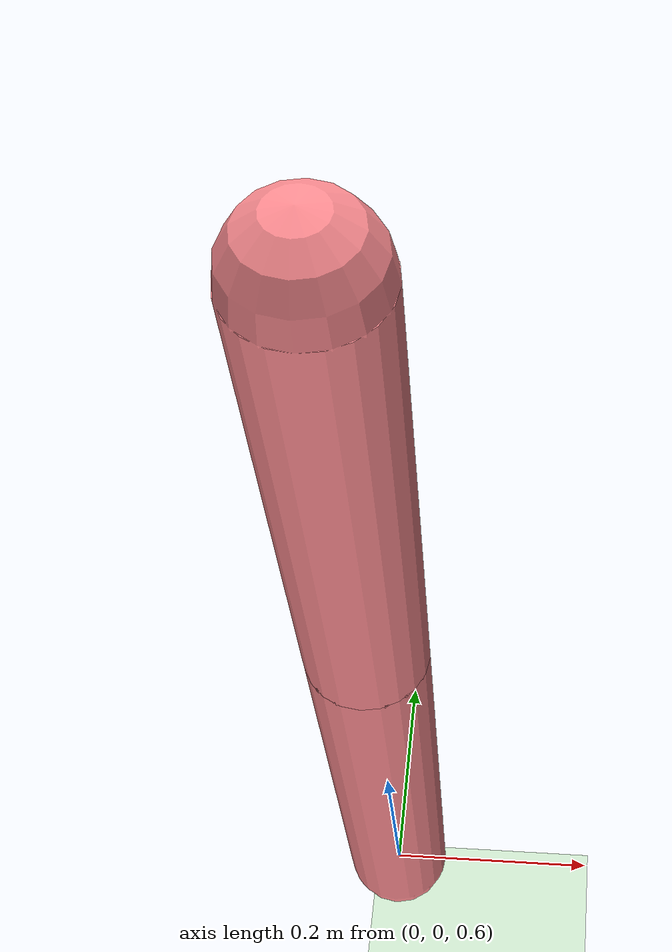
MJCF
<mujoco model="hopper">
  <compiler angle="degree" coordinate="global" inertiafromgeom="true"/>
  <default>
    <joint armature="1" damping="1" limited="true"/>
    <geom conaffinity="1" condim="1" contype="1" margin="0.001" rgba=".98 .54 .56 1." solimp=".8 .8 .01" solref=".02 1"/>
    <motor ctrllimited="true" ctrlrange="-.4 .4"/>
  </default>
  <option integrator="RK4" timestep="0.002"/>
  <visual>
    <headlight ambient=".1 .1 .1" diffuse=".6 .6 .6" specular="0.3 0.3 0.3"/>
    <map znear=".01"/>
    <quality shadowsize="16384"/>
  </visual>
  <worldbody>
    <light cutoff="100" diffuse="1 1 1" dir="-1 0 -1.3" directional="true" exponent="1" pos="1 0 1.3" specular=".1 .1 .1" castshadow="true"/>
    <geom conaffinity="1" condim="3" name="floor" pos="0 0 0" rgba="0.8 0.9 0.8 1" size="200 200 .125" type="plane" material="grid_new"/>
    <body name="0" pos="0 0 1.25">
      <camera name="track" mode="trackcom" pos="0 -3 1" xyaxes="1 0 0 0 0 1"/>
      <joint armature="0" axis="1 0 0" damping="0" limited="false" name="rootx" pos="0 0 0" stiffness="0" type="slide"/>
      <joint armature="0" axis="0 0 1" damping="0" limited="false" name="rootz" pos="0 0 0" ref="1.25" stiffness="0" type="slide"/>
      <joint armature="0" axis="0 1 0" damping="0" limited="false" name="0_joint" pos="0 0 1.25" stiffness="0" type="hinge"/>
      <geom friction="0.9" fromto="-0 0 1.45 0 0 1.05" size="0.05" type="capsule"/>
      <body name="1" pos="0 0 1.05">
        <joint axis="0 -1 0" name="1_joint" pos="0 0 1.05" range="-360 360" type="hinge"/>
        <geom friction="2.0" fromto="0 0 1.05 0 0 0.6" size="0.05" type="capsule"/>
      </body>
    </body>
  </worldbody>
  <actuator>
    <motor ctrllimited="true" ctrlrange="-1.0 1.0" gear="200" joint="1_joint" name="1_joint"/>
  </actuator>
  <asset>
    <texture type="skybox" builtin="gradient" rgb1=".4 .5 .6" rgb2="0 0 0" width="100" height="100"/>
    <texture builtin="flat" height="1278" mark="cross" markrgb="1 1 1" name="texgeom" random="0.01" rgb1="0.8 0.6 0.4" rgb2="0.8 0.6 0.4" type="cube" width="127"/>
    <texture builtin="checker" height="100" name="texplane" rgb1="0 0 0" rgb2="0.8 0.8 0.8" type="2d" width="100"/>
    <material name="MatPlane" reflectance="0.5" shininess="1" specular="1" texrepeat="60 60" texture="texplane"/>
    <material name="geom" texture="texgeom" texuniform="true"/>
    <texture name="grid_new" type="2d" builtin="checker" rgb1=".1 .3 .2" rgb2=".2 .4 .3" width="1000" height="1000" mark="none" markrgb=".8 .6 .4"/>
    <material name="grid_new" texture="grid_new" texrepeat="0.2 0.2" texuniform="true" reflectance=".2"/>
  </asset>
</mujoco>
